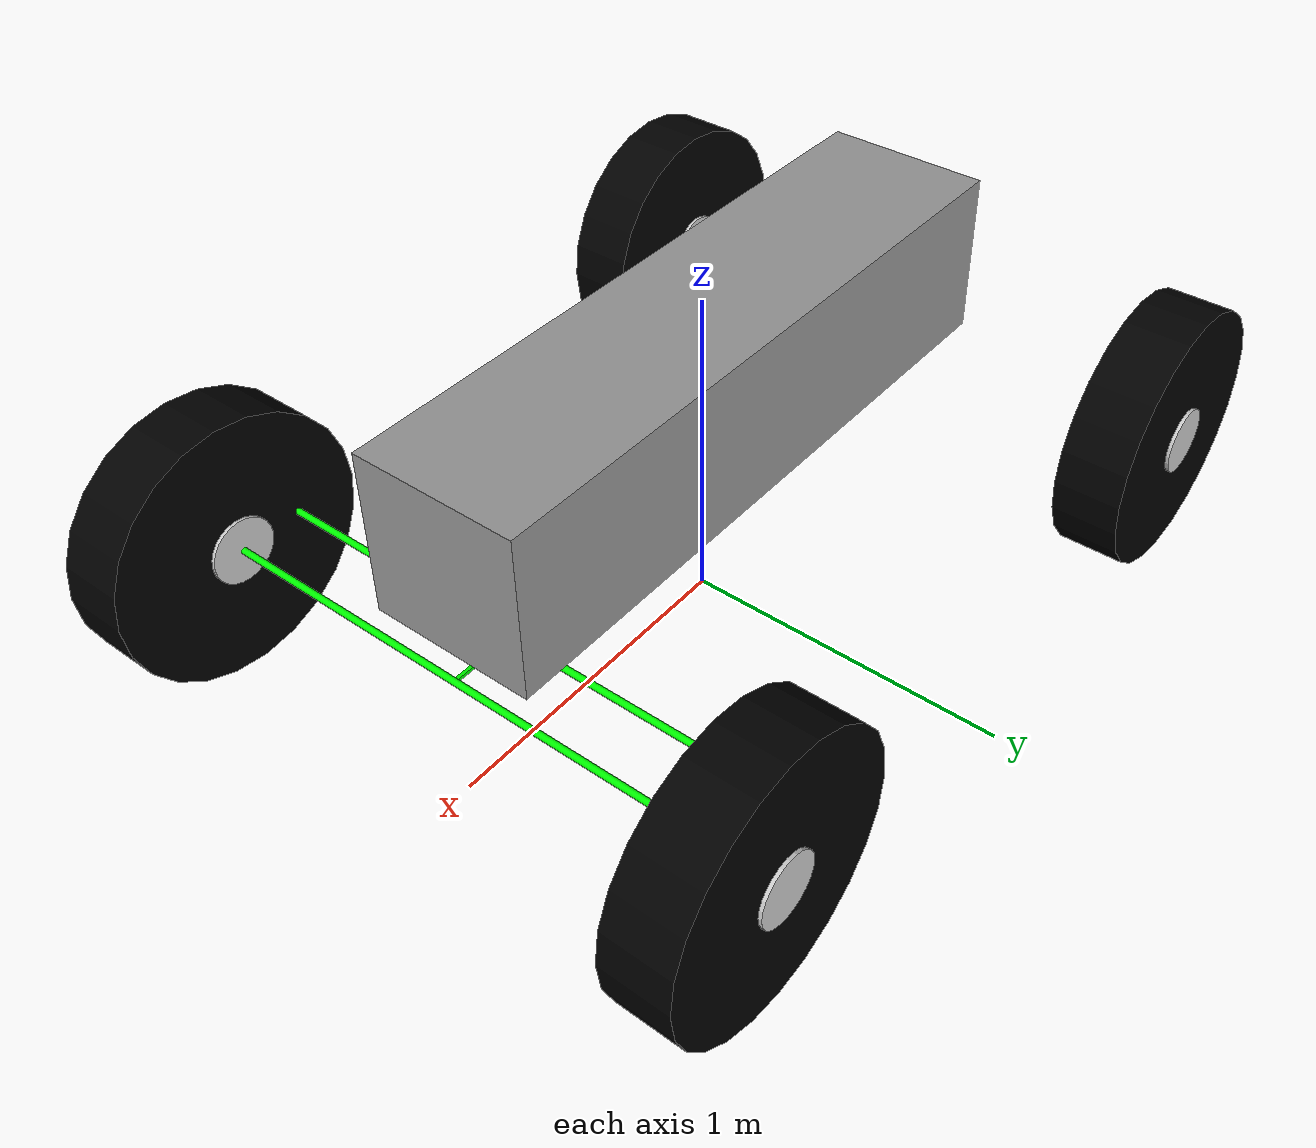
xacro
<?xml version="1.0"?>
<robot
  xmlns:gazebo="http://playerstage.sourceforge.net/gazebo/xmlschema/#gz"
  xmlns:model="http://playerstage.sourceforge.net/gazebo/xmlschema/#model"
  xmlns:sensor="http://playerstage.sourceforge.net/gazebo/xmlschema/#sensor"
  xmlns:body="http://playerstage.sourceforge.net/gazebo/xmlschema/#body"
  xmlns:geom="http://playerstage.sourceforge.net/gazebo/xmlschema/#geom"
  xmlns:joint="http://playerstage.sourceforge.net/gazebo/xmlschema/#joint"
  xmlns:controller="http://playerstage.sourceforge.net/gazebo/xmlschema/#controller"
  xmlns:interface="http://playerstage.sourceforge.net/gazebo/xmlschema/#interface"
  xmlns:rendering="http://playerstage.sourceforge.net/gazebo/xmlschema/#rendering"
  xmlns:physics="http://playerstage.sourceforge.net/gazebo/xmlschema/#physics"
  xmlns:xacro="http://www.ros.org/wiki/xacro"
  name="idris">

  <xacro:property name="chassis_length" value="2.0" />
  <xacro:property name="chassis_width" value="0.5" />
  <xacro:property name="chassis_height" value="0.5" />
  <xacro:property name="wheel_width" value="0.2" />
  <xacro:property name="wheel_radius" value="0.4" />
  <xacro:property name="ground_clearance" value="0.25" />
  <xacro:property name="chassis_to_wheel" value="0.4" />

  <material name="Red">
    <color rgba="1.0 0 0 1.0"/>
  </material>
  <material name="Green">
    <color rgba="0 1.0 0 1.0"/>
  </material>
  <material name="Grey">
    <color rgba="0.8 0.8 0.8 1.0"/>
  </material>
  <material name="Black">
    <color rgba="0 0 0 1.0"/>
  </material>

  <xacro:macro name="wheel" params="prefix front side">
    <link name="${prefix}_wheel">
     <collision>
       <origin rpy="${pi/2} 0 0" />
       <geometry>
         <cylinder length="${wheel_width}" radius="${wheel_radius}" />
       </geometry>
     </collision>
     <visual>
        <origin rpy="${pi/2} 0 0" />
        <geometry>
          <cylinder length="${wheel_width}" radius="${wheel_radius}" />
        </geometry>
        <material name="Black"/>
      </visual>
      <inertial>
        <origin xyz="0 0 0" rpy="0 0 0"/>
        <mass value="20"/>
        <inertia
          ixx="1.0" ixy="0.0" ixz="0.0"
          iyy="1.0" iyz="0.0"
          izz="1.0"/>
      </inertial>
    </link>
    <gazebo reference="${prefix}_wheel">
      <mu1>0.2</mu1>
      <mu2>0.2</mu2>
      <material>Gazebo/Black</material>
    </gazebo>

    <link name="${prefix}_axle">
      <visual>
        <origin rpy="${pi/2} 0 0" />
        <geometry>
          <cylinder length="${wheel_width * 1.1}" radius="0.1" />
        </geometry>
        <material name="Grey"/>
      </visual>
      <inertial>
        <origin xyz="0 0 0" rpy="0 0 0"/>
        <mass value="1"/>
        <inertia
          ixx="1.0" ixy="0.0" ixz="0.0"
          iyy="1.0" iyz="0.0"
          izz="1.0"/>
      </inertial>
    </link>
    <gazebo reference="${prefix}_axle">
      <mu1>0.2</mu1>
      <mu2>0.2</mu2>
      <material>Gazebo/Grey</material>
    </gazebo>

    <joint name="chassis_to_${prefix}_axle_joint" type="revolute">
      <parent link="chassis" />
      <child link="${prefix}_axle" />
      <limit lower="${-20*pi/180}" upper="${20*pi/180}" effort="1" velocity="0.5" />
      <origin
        xyz="${front * chassis_length/2} ${-side * (chassis_width + chassis_to_wheel)} ${-(chassis_height/2 + 0.1)}"
      />
      <axis xyz="0 0 -1"/>
    </joint>

    <joint name="${prefix}_axle_to_wheel_joint" type="continuous">
      <parent link="${prefix}_axle"/>
      <child link="${prefix}_wheel"/>
      <origin xyz="0 0 0" />
      <axis xyz="0 1 0"/>
    </joint>
  </xacro:macro>

  <!--
  This creates the front and rear Ackermann steering hardware.

  prefix is to give the axles different names: front and rear
  front is 1 for front and -1 for rear
  -->
  <xacro:macro name="steering" params="prefix front">
    <!-- Ackermann link -->
    <!-- Joins to the Car body -->
    <link name="${prefix}_ackermann">
      <inertial>
        <mass value="0.01" />
        <origin xyz="0 0 0" />
        <inertia  ixx="0.01" ixy="0.0"  ixz="0.0"  iyy="0.01"  iyz="0.0"  izz="0.01" />
      </inertial>
      <visual>
        <origin xyz="0 0 0" rpy="${pi/2} 0 0" />
        <geometry>
          <cylinder length="${2.0*(chassis_width + chassis_to_wheel)}" radius="0.01" />
        </geometry>
        <material name="Green"/>
      </visual>
    </link>
    <gazebo reference="front_link">
      <material>Gazebo/Green</material>
    </gazebo>
    <joint name="${prefix}_joint" type="fixed">
      <parent link="chassis"/>
      <child link="${prefix}_ackermann"/>
      <origin xyz="${front * chassis_length/2} 0.0 ${-(chassis_height/2 + 0.1)}"/>
    </joint>

    <!-- a link aligned with the steer direction -->
    <link name="${prefix}_steering">
      <inertial>
        <mass value="0.01" />
        <origin xyz="0 0 0" />
        <inertia  ixx="0.01" ixy="0.0"  ixz="0.0"  iyy="0.01"  iyz="0.0"  izz="0.01" />
      </inertial>
      <visual>
        <origin xyz="-0.1 0 0" />
        <geometry>
          <box size="0.2 0.01 0.01" />
        </geometry>
        <material name="Green"/>
      </visual>
    </link>
    <gazebo reference="${prefix}_steer_link">
      <material>Gazebo/Green</material>
    </gazebo>
    <joint name="${prefix}_steering_joint" type="revolute" >
      <limit lower="${-20*pi/180}" upper="${20*pi/180}" effort="100" velocity="10" />
      <axis xyz="0 0 1" />
      <parent link="${prefix}_ackermann" />
      <child link="${prefix}_steering" />
      <origin xyz="0.0 0.0 0.0" rpy="0 0 0" />
    </joint>

    <!-- Right and left steering arms -->
    <link name="${prefix}_right_steering_arm">
      <visual>
        <origin xyz="-0.1 0 0" rpy="0 ${pi/2} 0" />
        <geometry>
          <cylinder length="0.2" radius="0.01" />
        </geometry>
        <material name="Green"/>
      </visual>
      <inertial>
        <origin xyz="0 0 0" rpy="0 0 0"/>
        <mass value="1"/>
        <inertia
          ixx="1.0" ixy="0.0" ixz="0.0"
          iyy="1.0" iyz="0.0"
          izz="1.0"/>
      </inertial>
    </link>
    <gazebo reference="${prefix}_right_steering_arm">
      <mu1>0.2</mu1>
      <mu2>0.2</mu2>
      <material>Gazebo/Green</material>
    </gazebo>
    <joint name="${prefix}_right_arm_joint" type="revolute" >
      <limit lower="${-20*pi/180}" upper="${20*pi/180}" effort="100" velocity="10" />
      <axis xyz="0 0 1" />
      <parent link="${prefix}_ackermann" />
      <child link="${prefix}_right_steering_arm" />
      <origin xyz="0.0 ${-(chassis_width + chassis_to_wheel)} 0.0" rpy="0 0 0" />
    </joint>

    <link name="${prefix}_left_steering_arm">
      <visual>
        <origin xyz="-0.1 0 0" rpy="0 ${pi/2} 0" />
        <geometry>
          <cylinder length="0.2" radius="0.01" />
        </geometry>
        <material name="Green"/>
      </visual>
      <inertial>
        <origin xyz="0 0 0" rpy="0 0 0"/>
        <mass value="1"/>
        <inertia
          ixx="1.0" ixy="0.0" ixz="0.0"
          iyy="1.0" iyz="0.0"
          izz="1.0"/>
      </inertial>
    </link>
    <gazebo reference="${prefix}_left_steering_arm">
      <mu1>0.2</mu1>
      <mu2>0.2</mu2>
      <material>Gazebo/Green</material>
    </gazebo>
    <joint name="${prefix}_left_arm_joint" type="revolute" >
      <limit lower="${-20*pi/180}" upper="${20*pi/180}" effort="100" velocity="10" />
      <axis xyz="0 0 1" />
      <parent link="${prefix}_ackermann" />
      <child link="${prefix}_left_steering_arm" />
      <origin xyz="0.0 ${(chassis_width + chassis_to_wheel)} 0.0" rpy="0 0 0" />
    </joint>

    <!-- the Ackerman bar -->
    <link name="${prefix}_ackermann_bar">
      <inertial>
        <mass value="0.01" />
        <origin xyz="0 0 0" />
        <inertia  ixx="0.01" ixy="0.0"  ixz="0.0"  iyy="0.01"  iyz="0.0"  izz="0.01" />
      </inertial>
      <visual>
        <origin xyz="0 0 0" rpy="${pi/2} 0 0" />
        <geometry>
          <cylinder length="${2.0*(chassis_width + chassis_to_wheel)}" radius="0.01" />
        </geometry>
        <material name="Green"/>
      </visual>
    </link>
    <gazebo reference="${prefix}_ackermann_bar">
        <material>Gazebo/Green</material>
    </gazebo>
    <joint name="${prefix}_ackermann_joint" type="revolute" >
      <limit lower="${-20*pi/180}" upper="${20*pi/180}" effort="100" velocity="10" />
      <axis xyz="0 0 1" />
      <parent link="${prefix}_steering" />
      <child link="${prefix}_ackermann_bar" />
      <origin xyz="-0.2 0 0" rpy="0 0 0" />
    </joint>

    <!-- Gazebo Ackermann loop joints -->
    <gazebo>
      <joint:hinge name="${prefix}_ackermann_left_bar_joint">
        <body1>${prefix}_ackermann_bar</body1>
        <body2>${prefix}_left_steering_arm</body2>
        <anchor>${prefix}_ackermann_bar</anchor>
        <axis>0 0 1</axis>
        <anchorOffset>0 ${(chassis_width + chassis_to_wheel)} 0</anchorOffset>
      </joint:hinge>
    </gazebo>
    <gazebo>
      <joint:hinge name="${prefix}_ackermann_right_bar_joint">
        <body1>${prefix}_ackermann_bar</body1>
        <body2>${prefix}_right_steering_arm</body2>
        <anchor>${prefix}_ackermann_bar</anchor>
        <axis>0 0 1</axis>
        <anchorOffset>0 ${-(chassis_width + chassis_to_wheel)} 0</anchorOffset>
      </joint:hinge>
    </gazebo>
  </xacro:macro>

  <!--
  Base like to act as a reference.
  -->
  <link name="base_link"/>
  <gazebo reference="base_link">
  </gazebo>

  <!--
  Main chassis
  -->
  <link name="chassis">
    <collision>
      <geometry>
        <box size="${chassis_length} ${chassis_width} ${chassis_height}"/>
      </geometry>
    </collision>
    <visual>
      <geometry>
        <box size="${chassis_length} ${chassis_width} ${chassis_height}"/>
      </geometry>
    </visual>
    <inertial>
      <origin xyz="0 0 1" rpy="0 0 0"/>
      <mass value="300"/>
      <inertia
        ixx="1.0" ixy="0.0" ixz="0.0"
        iyy="1.0" iyz="0.0"
        izz="1.0"/>
    </inertial>
  </link>
  <gazebo reference="chassis">
    <material>Gazebo/Grey</material>
  </gazebo>

  <joint name="base_link_to_chassis_joint" type="fixed">
    <parent link="base_link"/>
    <child link="chassis"/>
    <origin xyz="0 0 ${chassis_height + ground_clearance}"/>
  </joint>

  <xacro:wheel prefix="front_right" front="1" side="1" />
  <xacro:wheel prefix="front_left" front="1" side="-1" />
  <xacro:wheel prefix="rear_right" front="-1" side="1" />
  <xacro:wheel prefix="rear_left" front="-1" side="-1" />

  <xacro:steering prefix="front" front="1" />

  <transmission name="trans_front_steering">
    <type>transmission_interface/SimpleTransmission</type>
    <joint name="chassis_to_front_right_axle_joint">
      <hardwareInterface>hardware_interface/PositionJointInterface</hardwareInterface>
    </joint>
    <actuator name="front_steering_motor">
      <mechanicalReduction>1</mechanicalReduction>
    </actuator>
  </transmission>

  <transmission name="trans_rear_steering">
    <type>transmission_interface/SimpleTransmission</type>
    <joint name="chassis_to_rear_right_axle_joint">
      <hardwareInterface>hardware_interface/PositionJointInterface</hardwareInterface>
    </joint>
    <actuator name="rear_steering_motor">
      <mechanicalReduction>1</mechanicalReduction>
    </actuator>
  </transmission>

  <transmission name="transfront_right_wheel">
    <type>transmission_interface/SimpleTransmission</type>
    <joint name="front_right_axle_to_wheel_joint">
      <hardwareInterface>hardware_interface/EffortJointInterface</hardwareInterface>
    </joint>
    <actuator name="front_right_wheel_motor">
      <hardwareInterface>hardware_interface/EffortJointInterface</hardwareInterface>
      <mechanicalReduction>1</mechanicalReduction>
    </actuator>
  </transmission>

  <gazebo>

    <plugin name="odometry" filename="libgazebo_ros_p3d.so">
      <updateRate>100.0</updateRate>
      <robotNamespace>/idris</robotNamespace>
      <topicName>odom</topicName>
      <bodyName>base_link</bodyName>
    </plugin>

    <plugin name="gazebo_ros_control" filename="libgazebo_ros_control.so">
      <robotNamespace>/idris</robotNamespace>
      <robotSimType>gazebo_ros_control/DefaultRobotHWSim</robotSimType>
    </plugin>
  </gazebo>

</robot>
